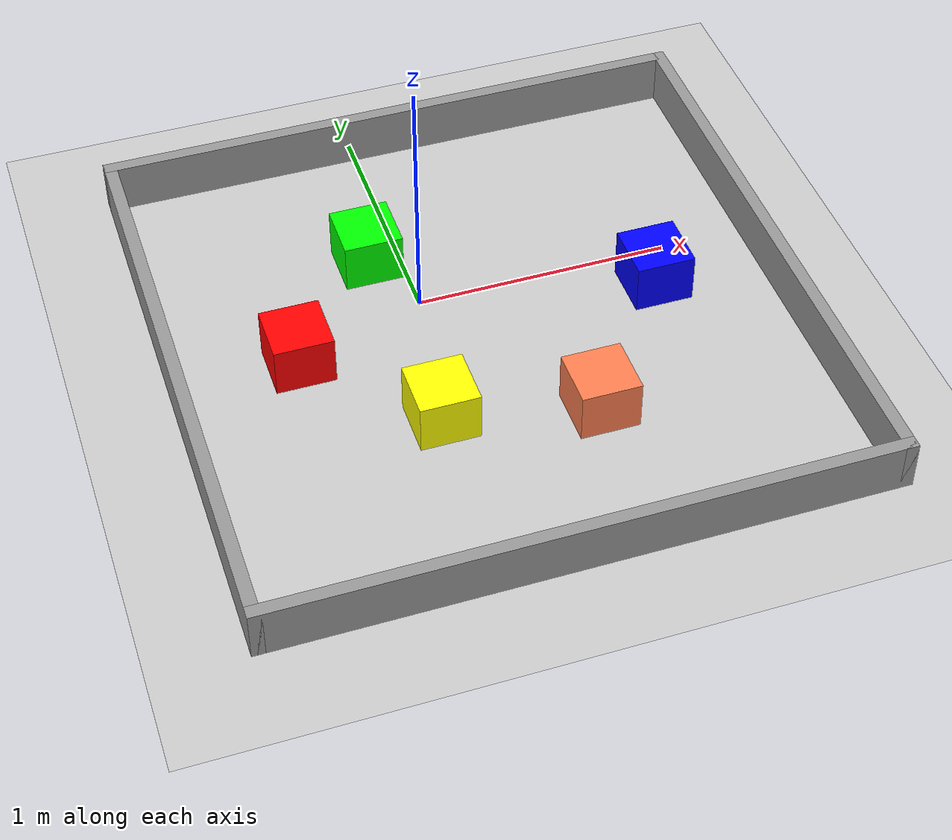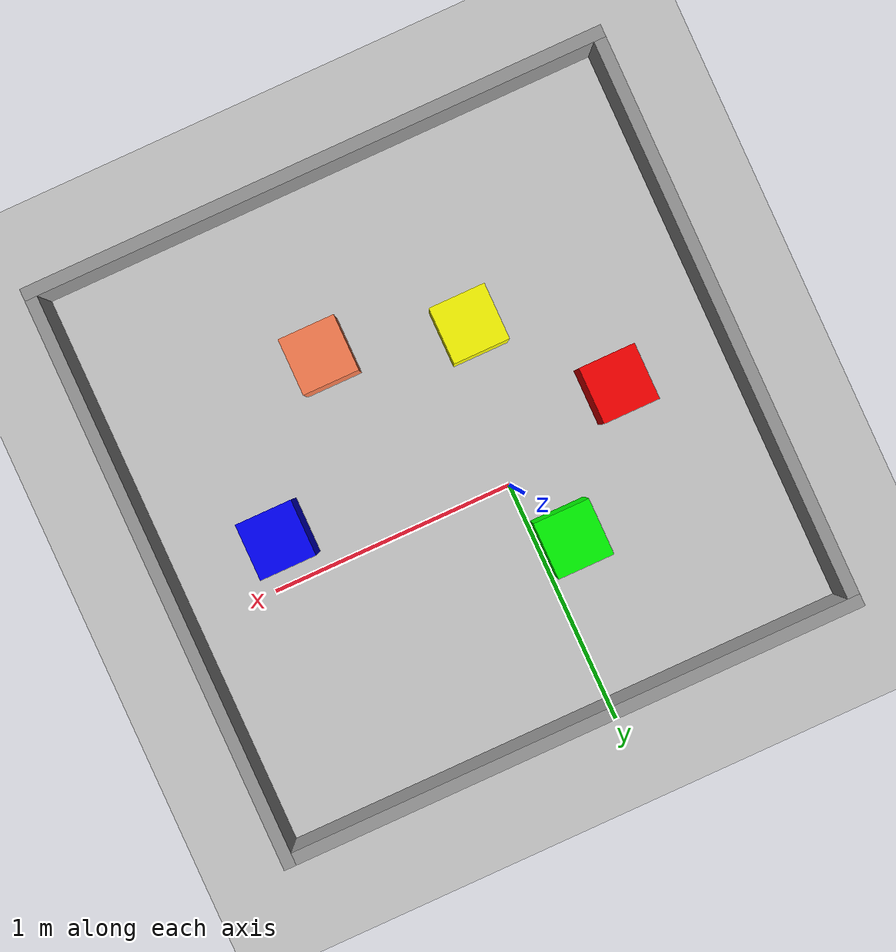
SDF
<sdf version="1.6">
 <world name="default">
  <light name="sun" type="directional">
   <pose>0 0 10 0 -0 0</pose>
   <diffuse>0.8 0.8 0.8 1</diffuse>
   <specular>0.1 0.1 0.1 1</specular>
   <attenuation>
    <range>1000</range>
    <constant>0.9</constant>
    <linear>0.01</linear>
    <quadratic>0.001</quadratic>
   </attenuation>
   <direction>-0.5 0.5 -1</direction>
  </light>
  <model name="ground_plane">
   <static>1</static>
   <link name="link">
    <collision name="collision">
     <geometry><plane><normal>0 0 1</normal><size>100 100</size></plane></geometry>
     <surface><friction><ode><mu>100</mu><mu2>50</mu2></ode></friction></surface>
    </collision>
    <visual name="visual">
     <cast_shadows>0</cast_shadows>
     <geometry><plane><normal>0 0 1</normal><size>100 100</size></plane></geometry>
     <material>
      <script><uri>file://media/materials/scripts/gazebo.material</uri><name>Gazebo/Grey</name></script>
     </material>
    </visual>
   </link>
  </model>
  <gravity>0 0 -9.8</gravity>
  <magnetic_field>6e-06 2.3e-05 -4.2e-05</magnetic_field>
  <atmosphere type="adiabatic"/>
  <physics name="default_physics" default="0" type="ode">
   <max_step_size>0.001</max_step_size>
   <real_time_factor>1</real_time_factor>
   <real_time_update_rate>1000</real_time_update_rate>
  </physics>
  <scene><ambient>0.4 0.4 0.4 1</ambient><background>0.7 0.7 0.7 1</background><shadows>1</shadows></scene>
  <spherical_coordinates>
   <surface_model>EARTH_WGS84</surface_model>
   <latitude_deg>0</latitude_deg>
   <longitude_deg>0</longitude_deg>
   <elevation>0</elevation>
   <heading_deg>0</heading_deg>
  </spherical_coordinates>
  <model name="wro-arc_arena_true">
   <link name="Wall_13">
    <pose>0 -1.175 0 0 -0 0</pose>
    <visual name="Wall_13_Visual">
     <pose>0 0 0.1 0 -0 0</pose>
     <geometry><box><size>2.4 0.05 0.2</size></box></geometry>
     <material>
      <script><uri>file://media/materials/scripts/gazebo.material</uri><name>Gazebo/Grey</name></script>
      <ambient>0 0 0 1</ambient>
      <diffuse>0.7 0.7 0.7 1</diffuse>
      <specular>0.01 0.01 0.01 1</specular>
      <emissive>0 0 0 1</emissive>
     </material>
    </visual>
    <collision name="Wall_13_Collision">
     <pose>0 0 0.1 0 -0 0</pose>
     <geometry><box><size>2.4 0.05 0.2</size></box></geometry>
     <surface>
      <friction>
       <ode><mu>1</mu><mu2>1</mu2><fdir1>0 0 0</fdir1><slip1>0</slip1><slip2>0</slip2></ode>
       <torsional>
        <coefficient>1</coefficient>
        <patch_radius>0</patch_radius>
        <surface_radius>0</surface_radius>
        <use_patch_radius>1</use_patch_radius>
        <ode><slip>0</slip></ode>
       </torsional>
      </friction>
      <bounce><restitution_coefficient>0</restitution_coefficient><threshold>1e+06</threshold></bounce>
      <contact>
       <collide_without_contact>0</collide_without_contact>
       <collide_without_contact_bitmask>1</collide_without_contact_bitmask>
       <collide_bitmask>1</collide_bitmask>
       <ode>
        <soft_cfm>0</soft_cfm>
        <soft_erp>0.2</soft_erp>
        <kp>1e+13</kp>
        <kd>1</kd>
        <max_vel>0.01</max_vel>
        <min_depth>0</min_depth>
       </ode>
       <bullet>
        <split_impulse>1</split_impulse>
        <split_impulse_penetration_threshold>-0.01</split_impulse_penetration_threshold>
        <soft_cfm>0</soft_cfm>
        <soft_erp>0.2</soft_erp>
        <kp>1e+13</kp>
        <kd>1</kd>
       </bullet>
      </contact>
     </surface>
    </collision>
   </link>
   <link name="Wall_15">
    <pose>1.175 0 0 0 -0 1.5708</pose>
    <inertial>
     <mass>1</mass>
     <inertia><ixx>1</ixx><ixy>0</ixy><ixz>0</ixz><iyy>1</iyy><iyz>0</iyz><izz>1</izz></inertia>
    </inertial>
    <visual name="Wall_15_Visual">
     <pose>0 0 0.1 0 -0 0</pose>
     <geometry><box><size>2.4 0.05 0.2</size></box></geometry>
     <material>
      <script><uri>file://media/materials/scripts/gazebo.material</uri><name>Gazebo/Grey</name></script>
      <ambient>0 0 0 1</ambient>
      <diffuse>0.7 0.7 0.7 1</diffuse>
      <specular>0.01 0.01 0.01 1</specular>
      <emissive>0 0 0 1</emissive>
      <shader type="vertex"><normal_map>__default__</normal_map></shader>
     </material>
    </visual>
    <collision name="Wall_15_Collision">
     <pose>0 0 0.1 0 -0 0</pose>
     <geometry><box><size>2.4 0.05 0.2</size></box></geometry>
     <surface>
      <friction>
       <ode><mu>1</mu><mu2>1</mu2><fdir1>0 0 0</fdir1><slip1>0</slip1><slip2>0</slip2></ode>
       <torsional>
        <coefficient>1</coefficient>
        <patch_radius>0</patch_radius>
        <surface_radius>0</surface_radius>
        <use_patch_radius>1</use_patch_radius>
        <ode><slip>0</slip></ode>
       </torsional>
      </friction>
      <bounce><restitution_coefficient>0</restitution_coefficient><threshold>1e+06</threshold></bounce>
      <contact>
       <collide_without_contact>0</collide_without_contact>
       <collide_without_contact_bitmask>1</collide_without_contact_bitmask>
       <collide_bitmask>1</collide_bitmask>
       <ode>
        <soft_cfm>0</soft_cfm>
        <soft_erp>0.2</soft_erp>
        <kp>1e+13</kp>
        <kd>1</kd>
        <max_vel>0.01</max_vel>
        <min_depth>0</min_depth>
       </ode>
       <bullet>
        <split_impulse>1</split_impulse>
        <split_impulse_penetration_threshold>-0.01</split_impulse_penetration_threshold>
        <soft_cfm>0</soft_cfm>
        <soft_erp>0.2</soft_erp>
        <kp>1e+13</kp>
        <kd>1</kd>
       </bullet>
      </contact>
     </surface>
    </collision>
   </link>
   <link name="Wall_17">
    <pose>0 1.175 0 0 -0 3.14159</pose>
    <visual name="Wall_17_Visual">
     <pose>0 0 0.1 0 -0 0</pose>
     <geometry><box><size>2.4 0.05 0.2</size></box></geometry>
     <material>
      <script><uri>file://media/materials/scripts/gazebo.material</uri><name>Gazebo/Grey</name></script>
      <ambient>0 0 0 1</ambient>
      <diffuse>0.7 0.7 0.7 1</diffuse>
      <specular>0.01 0.01 0.01 1</specular>
      <emissive>0 0 0 1</emissive>
     </material>
    </visual>
    <collision name="Wall_17_Collision">
     <pose>0 0 0.1 0 -0 0</pose>
     <geometry><box><size>2.4 0.05 0.2</size></box></geometry>
     <surface>
      <friction>
       <ode><mu>1</mu><mu2>1</mu2><fdir1>0 0 0</fdir1><slip1>0</slip1><slip2>0</slip2></ode>
       <torsional>
        <coefficient>1</coefficient>
        <patch_radius>0</patch_radius>
        <surface_radius>0</surface_radius>
        <use_patch_radius>1</use_patch_radius>
        <ode><slip>0</slip></ode>
       </torsional>
      </friction>
      <bounce><restitution_coefficient>0</restitution_coefficient><threshold>1e+06</threshold></bounce>
      <contact>
       <collide_without_contact>0</collide_without_contact>
       <collide_without_contact_bitmask>1</collide_without_contact_bitmask>
       <collide_bitmask>1</collide_bitmask>
       <ode>
        <soft_cfm>0</soft_cfm>
        <soft_erp>0.2</soft_erp>
        <kp>1e+13</kp>
        <kd>1</kd>
        <max_vel>0.01</max_vel>
        <min_depth>0</min_depth>
       </ode>
       <bullet>
        <split_impulse>1</split_impulse>
        <split_impulse_penetration_threshold>-0.01</split_impulse_penetration_threshold>
        <soft_cfm>0</soft_cfm>
        <soft_erp>0.2</soft_erp>
        <kp>1e+13</kp>
        <kd>1</kd>
       </bullet>
      </contact>
     </surface>
    </collision>
   </link>
   <link name="Wall_19">
    <pose>-1.175 0 0 0 0 -1.5708</pose>
    <visual name="Wall_19_Visual">
     <pose>0 0 0.1 0 -0 0</pose>
     <geometry><box><size>2.4 0.05 0.2</size></box></geometry>
     <material>
      <script><uri>file://media/materials/scripts/gazebo.material</uri><name>Gazebo/Grey</name></script>
      <ambient>0 0 0 1</ambient>
      <diffuse>0.7 0.7 0.7 1</diffuse>
      <specular>0.01 0.01 0.01 1</specular>
      <emissive>0 0 0 1</emissive>
     </material>
    </visual>
    <collision name="Wall_19_Collision">
     <pose>0 0 0.1 0 -0 0</pose>
     <geometry><box><size>2.4 0.05 0.2</size></box></geometry>
     <surface>
      <friction>
       <ode><mu>1</mu><mu2>1</mu2><fdir1>0 0 0</fdir1><slip1>0</slip1><slip2>0</slip2></ode>
       <torsional>
        <coefficient>1</coefficient>
        <patch_radius>0</patch_radius>
        <surface_radius>0</surface_radius>
        <use_patch_radius>1</use_patch_radius>
        <ode><slip>0</slip></ode>
       </torsional>
      </friction>
      <bounce><restitution_coefficient>0</restitution_coefficient><threshold>1e+06</threshold></bounce>
      <contact>
       <collide_without_contact>0</collide_without_contact>
       <collide_without_contact_bitmask>1</collide_without_contact_bitmask>
       <collide_bitmask>1</collide_bitmask>
       <ode>
        <soft_cfm>0</soft_cfm>
        <soft_erp>0.2</soft_erp>
        <kp>1e+13</kp>
        <kd>1</kd>
        <max_vel>0.01</max_vel>
        <min_depth>0</min_depth>
       </ode>
       <bullet>
        <split_impulse>1</split_impulse>
        <split_impulse_penetration_threshold>-0.01</split_impulse_penetration_threshold>
        <soft_cfm>0</soft_cfm>
        <soft_erp>0.2</soft_erp>
        <kp>1e+13</kp>
        <kd>1</kd>
       </bullet>
      </contact>
     </surface>
    </collision>
   </link>
   <link name="link_0_clone">
    <pose>-0.28523 -0.382238 0.1 0 -0 0</pose>
    <inertial>
     <mass>1</mass>
     <inertia>
      <ixx>0.166667</ixx>
      <ixy>0</ixy>
      <ixz>0</ixz>
      <iyy>0.166667</iyy>
      <iyz>0</iyz>
      <izz>0.166667</izz>
     </inertia>
    </inertial>
    <visual name="visual">
     <geometry><box><size>0.23 0.23 0.2</size></box></geometry>
     <material>
      <lighting>1</lighting>
      <script><uri>file://media/materials/scripts/gazebo.material</uri><name>Gazebo/Grey</name></script>
      <ambient>1 1 0 1</ambient>
      <diffuse>1 1 0 1</diffuse>
      <specular>1 1 0 1</specular>
      <emissive>0 0 0 1</emissive>
      <shader type="vertex"><normal_map>__default__</normal_map></shader>
     </material>
    </visual>
    <collision name="collision">
     <geometry><box><size>0.23 0.23 0.2</size></box></geometry>
     <surface>
      <friction>
       <ode><mu>1</mu><mu2>1</mu2><fdir1>0 0 0</fdir1><slip1>0</slip1><slip2>0</slip2></ode>
       <torsional>
        <coefficient>1</coefficient>
        <patch_radius>0</patch_radius>
        <surface_radius>0</surface_radius>
        <use_patch_radius>1</use_patch_radius>
        <ode><slip>0</slip></ode>
       </torsional>
      </friction>
      <bounce><restitution_coefficient>0</restitution_coefficient><threshold>1e+06</threshold></bounce>
      <contact>
       <collide_without_contact>0</collide_without_contact>
       <collide_without_contact_bitmask>1</collide_without_contact_bitmask>
       <collide_bitmask>1</collide_bitmask>
       <ode>
        <soft_cfm>0</soft_cfm>
        <soft_erp>0.2</soft_erp>
        <kp>1e+13</kp>
        <kd>1</kd>
        <max_vel>0.01</max_vel>
        <min_depth>0</min_depth>
       </ode>
       <bullet>
        <split_impulse>1</split_impulse>
        <split_impulse_penetration_threshold>-0.01</split_impulse_penetration_threshold>
        <soft_cfm>0</soft_cfm>
        <soft_erp>0.2</soft_erp>
        <kp>1e+13</kp>
        <kd>1</kd>
       </bullet>
      </contact>
     </surface>
    </collision>
   </link>
   <link name="link_0_clone_0">
    <pose>0.71477 0.05693 0.1 0 -0 0</pose>
    <inertial>
     <mass>1</mass>
     <inertia>
      <ixx>0.166667</ixx>
      <ixy>0</ixy>
      <ixz>0</ixz>
      <iyy>0.166667</iyy>
      <iyz>0</iyz>
      <izz>0.166667</izz>
     </inertia>
    </inertial>
    <visual name="visual">
     <geometry><box><size>0.23 0.23 0.2</size></box></geometry>
     <material>
      <lighting>1</lighting>
      <script><uri>file://media/materials/scripts/gazebo.material</uri><name>Gazebo/Grey</name></script>
      <ambient>0 0 1 1</ambient>
      <diffuse>0 0 1 1</diffuse>
      <specular>0 0 1 1</specular>
      <emissive>0 0 0 1</emissive>
      <shader type="vertex"><normal_map>__default__</normal_map></shader>
     </material>
    </visual>
    <collision name="collision">
     <geometry><box><size>0.23 0.23 0.2</size></box></geometry>
     <surface>
      <friction>
       <ode><mu>1</mu><mu2>1</mu2><fdir1>0 0 0</fdir1><slip1>0</slip1><slip2>0</slip2></ode>
       <torsional>
        <coefficient>1</coefficient>
        <patch_radius>0</patch_radius>
        <surface_radius>0</surface_radius>
        <use_patch_radius>1</use_patch_radius>
        <ode><slip>0</slip></ode>
       </torsional>
      </friction>
      <bounce><restitution_coefficient>0</restitution_coefficient><threshold>1e+06</threshold></bounce>
      <contact>
       <collide_without_contact>0</collide_without_contact>
       <collide_without_contact_bitmask>1</collide_without_contact_bitmask>
       <collide_bitmask>1</collide_bitmask>
       <ode>
        <soft_cfm>0</soft_cfm>
        <soft_erp>0.2</soft_erp>
        <kp>1e+13</kp>
        <kd>1</kd>
        <max_vel>0.01</max_vel>
        <min_depth>0</min_depth>
       </ode>
       <bullet>
        <split_impulse>1</split_impulse>
        <split_impulse_penetration_threshold>-0.01</split_impulse_penetration_threshold>
        <soft_cfm>0</soft_cfm>
        <soft_erp>0.2</soft_erp>
        <kp>1e+13</kp>
        <kd>1</kd>
       </bullet>
      </contact>
     </surface>
    </collision>
   </link>
   <link name="link_0_clone_1">
    <pose>-0.705189 0.05693 0.1 0 -0 0</pose>
    <inertial>
     <mass>1</mass>
     <inertia>
      <ixx>0.166667</ixx>
      <ixy>0</ixy>
      <ixz>0</ixz>
      <iyy>0.166667</iyy>
      <iyz>0</iyz>
      <izz>0.166667</izz>
     </inertia>
    </inertial>
    <visual name="visual">
     <geometry><box><size>0.23 0.23 0.2</size></box></geometry>
     <material>
      <lighting>1</lighting>
      <script><uri>file://media/materials/scripts/gazebo.material</uri><name>Gazebo/Grey</name></script>
      <ambient>1 0 0 1</ambient>
      <diffuse>1 0 0 1</diffuse>
      <specular>1 0 0 1</specular>
      <emissive>0 0 0 1</emissive>
      <shader type="vertex"><normal_map>__default__</normal_map></shader>
     </material>
    </visual>
    <collision name="collision">
     <geometry><box><size>0.23 0.23 0.2</size></box></geometry>
     <surface>
      <friction>
       <ode><mu>1</mu><mu2>1</mu2><fdir1>0 0 0</fdir1><slip1>0</slip1><slip2>0</slip2></ode>
       <torsional>
        <coefficient>1</coefficient>
        <patch_radius>0</patch_radius>
        <surface_radius>0</surface_radius>
        <use_patch_radius>1</use_patch_radius>
        <ode><slip>0</slip></ode>
       </torsional>
      </friction>
      <bounce><restitution_coefficient>0</restitution_coefficient><threshold>1e+06</threshold></bounce>
      <contact>
       <collide_without_contact>0</collide_without_contact>
       <collide_without_contact_bitmask>1</collide_without_contact_bitmask>
       <collide_bitmask>1</collide_bitmask>
       <ode>
        <soft_cfm>0</soft_cfm>
        <soft_erp>0.2</soft_erp>
        <kp>1e+13</kp>
        <kd>1</kd>
        <max_vel>0.01</max_vel>
        <min_depth>0</min_depth>
       </ode>
       <bullet>
        <split_impulse>1</split_impulse>
        <split_impulse_penetration_threshold>-0.01</split_impulse_penetration_threshold>
        <soft_cfm>0</soft_cfm>
        <soft_erp>0.2</soft_erp>
        <kp>1e+13</kp>
        <kd>1</kd>
       </bullet>
      </contact>
     </surface>
    </collision>
   </link>
   <link name="link_0_clone_2">
    <pose>-0.306983 0.51741 0.1 0 -0 0</pose>
    <inertial>
     <mass>1</mass>
     <inertia>
      <ixx>0.166667</ixx>
      <ixy>0</ixy>
      <ixz>0</ixz>
      <iyy>0.166667</iyy>
      <iyz>0</iyz>
      <izz>0.166667</izz>
     </inertia>
    </inertial>
    <visual name="visual">
     <geometry><box><size>0.23 0.23 0.2</size></box></geometry>
     <material>
      <lighting>1</lighting>
      <script><uri>file://media/materials/scripts/gazebo.material</uri><name>Gazebo/Grey</name></script>
      <ambient>0 1 0 1</ambient>
      <diffuse>0 1 0 1</diffuse>
      <specular>0 1 0 1</specular>
      <emissive>0 0 0 1</emissive>
      <shader type="vertex"><normal_map>__default__</normal_map></shader>
     </material>
    </visual>
    <collision name="collision">
     <geometry><box><size>0.23 0.23 0.2</size></box></geometry>
     <surface>
      <friction>
       <ode><mu>1</mu><mu2>1</mu2><fdir1>0 0 0</fdir1><slip1>0</slip1><slip2>0</slip2></ode>
       <torsional>
        <coefficient>1</coefficient>
        <patch_radius>0</patch_radius>
        <surface_radius>0</surface_radius>
        <use_patch_radius>1</use_patch_radius>
        <ode><slip>0</slip></ode>
       </torsional>
      </friction>
      <bounce><restitution_coefficient>0</restitution_coefficient><threshold>1e+06</threshold></bounce>
      <contact>
       <collide_without_contact>0</collide_without_contact>
       <collide_without_contact_bitmask>1</collide_without_contact_bitmask>
       <collide_bitmask>1</collide_bitmask>
       <ode>
        <soft_cfm>0</soft_cfm>
        <soft_erp>0.2</soft_erp>
        <kp>1e+13</kp>
        <kd>1</kd>
        <max_vel>0.01</max_vel>
        <min_depth>0</min_depth>
       </ode>
       <bullet>
        <split_impulse>1</split_impulse>
        <split_impulse_penetration_threshold>-0.01</split_impulse_penetration_threshold>
        <soft_cfm>0</soft_cfm>
        <soft_erp>0.2</soft_erp>
        <kp>1e+13</kp>
        <kd>1</kd>
       </bullet>
      </contact>
     </surface>
    </collision>
   </link>
   <link name="link_0_clone_3">
    <pose>0.27936 -0.510375 0.1 0 -0 0</pose>
    <inertial>
     <mass>1</mass>
     <inertia>
      <ixx>0.166667</ixx>
      <ixy>0</ixy>
      <ixz>0</ixz>
      <iyy>0.166667</iyy>
      <iyz>0</iyz>
      <izz>0.166667</izz>
     </inertia>
    </inertial>
    <visual name="visual">
     <geometry><box><size>0.23 0.23 0.2</size></box></geometry>
     <material>
      <lighting>1</lighting>
      <script><uri>file://media/materials/scripts/gazebo.material</uri><name>Gazebo/Grey</name></script>
      <ambient>1 0.498 0.314 1</ambient>
      <diffuse>1 0.498 0.314 1</diffuse>
      <specular>1 0.498 0.314 1</specular>
      <emissive>0 0 0 1</emissive>
      <shader type="vertex"><normal_map>__default__</normal_map></shader>
     </material>
    </visual>
    <collision name="collision">
     <geometry><box><size>0.23 0.23 0.2</size></box></geometry>
     <surface>
      <friction>
       <ode><mu>1</mu><mu2>1</mu2><fdir1>0 0 0</fdir1><slip1>0</slip1><slip2>0</slip2></ode>
       <torsional>
        <coefficient>1</coefficient>
        <patch_radius>0</patch_radius>
        <surface_radius>0</surface_radius>
        <use_patch_radius>1</use_patch_radius>
        <ode><slip>0</slip></ode>
       </torsional>
      </friction>
      <bounce><restitution_coefficient>0</restitution_coefficient><threshold>1e+06</threshold></bounce>
      <contact>
       <collide_without_contact>0</collide_without_contact>
       <collide_without_contact_bitmask>1</collide_without_contact_bitmask>
       <collide_bitmask>1</collide_bitmask>
       <ode>
        <soft_cfm>0</soft_cfm>
        <soft_erp>0.2</soft_erp>
        <kp>1e+13</kp>
        <kd>1</kd>
        <max_vel>0.01</max_vel>
        <min_depth>0</min_depth>
       </ode>
       <bullet>
        <split_impulse>1</split_impulse>
        <split_impulse_penetration_threshold>-0.01</split_impulse_penetration_threshold>
        <soft_cfm>0</soft_cfm>
        <soft_erp>0.2</soft_erp>
        <kp>1e+13</kp>
        <kd>1</kd>
       </bullet>
      </contact>
     </surface>
    </collision>
   </link>
   <static>1</static>
   <pose>0.17871 -0.241451 0 0 -0 0</pose>
  </model>
 </world>
</sdf>
